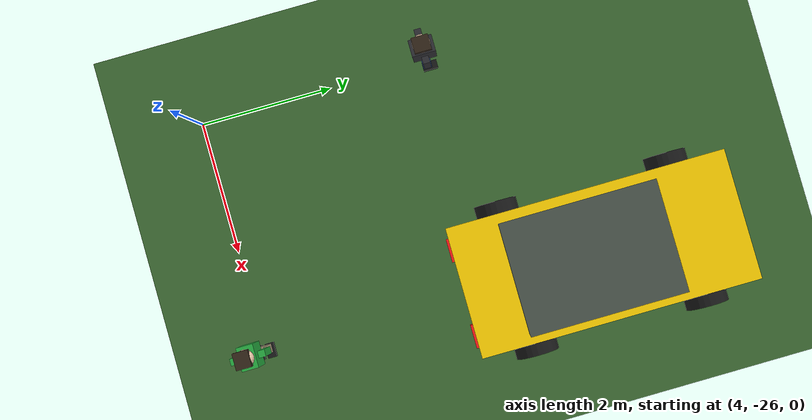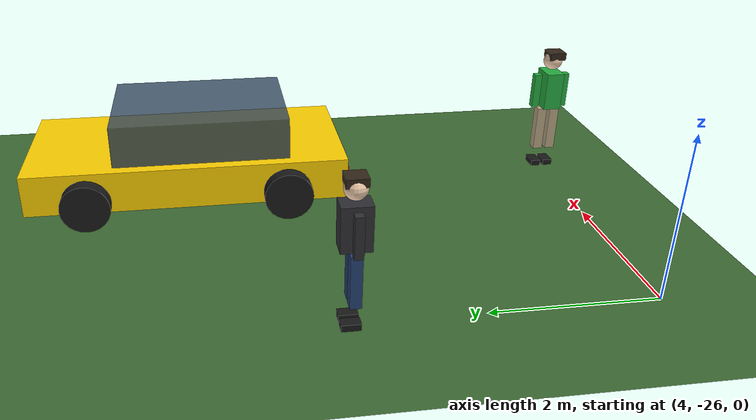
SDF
<sdf version="1.7">
 <world name="city_world">
  <model name="ground_plane">
   <static>true</static>
   <link name="link">
    <collision name="collision">
     <geometry><plane><normal>0 0 1</normal><size>300 300</size></plane></geometry>
     <surface><friction><ode><mu>100</mu><mu2>50</mu2></ode></friction></surface>
    </collision>
    <visual name="visual">
     <geometry><plane><normal>0 0 1</normal><size>300 300</size></plane></geometry>
     <material><ambient>0.24 0.42 0.20 1</ambient><diffuse>0.24 0.42 0.20 1</diffuse></material>
    </visual>
   </link>
  </model>
  <model name="car_7">
   <pose>7.5 -20.8 0.01 0 0 1.5708</pose>
   <static>true</static>
   <link name="link">
    <visual name="body">
     <pose>0 0 0.45 0 0 0</pose>
     <geometry><box><size>4.2 1.95 0.55</size></box></geometry>
     <material>
      <ambient>1.00 0.82 0.00 1</ambient>
      <diffuse>1.00 0.82 0.00 1</diffuse>
      <specular>0.5 0.5 0.5 1</specular>
     </material>
    </visual>
    <visual name="cabin">
     <pose>-0.2 0 0.95 0 0 0</pose>
     <geometry><box><size>2.3 1.65 0.65</size></box></geometry>
     <material>
      <ambient>0.22 0.30 0.40 0.85</ambient>
      <diffuse>0.22 0.30 0.40 0.85</diffuse>
      <specular>0.7 0.7 0.7 1</specular>
     </material>
    </visual>
    <visual name="hl_l">
     <pose>2.1 0.65 0.45 0 0 0</pose>
     <geometry><box><size>0.08 0.35 0.18</size></box></geometry>
     <material><ambient>1 1 0.8 1</ambient><diffuse>1 1 0.8 1</diffuse><emissive>1 1 0.8 1</emissive></material>
    </visual>
    <visual name="hl_r">
     <pose>2.1 -0.65 0.45 0 0 0</pose>
     <geometry><box><size>0.08 0.35 0.18</size></box></geometry>
     <material><ambient>1 1 0.8 1</ambient><diffuse>1 1 0.8 1</diffuse><emissive>1 1 0.8 1</emissive></material>
    </visual>
    <visual name="tl_l">
     <pose>-2.1 0.65 0.45 0 0 0</pose>
     <geometry><box><size>0.08 0.35 0.18</size></box></geometry>
     <material>
      <ambient>1 0.1 0.1 1</ambient>
      <diffuse>1 0.1 0.1 1</diffuse>
      <emissive>0.8 0 0 1</emissive>
     </material>
    </visual>
    <visual name="tl_r">
     <pose>-2.1 -0.65 0.45 0 0 0</pose>
     <geometry><box><size>0.08 0.35 0.18</size></box></geometry>
     <material>
      <ambient>1 0.1 0.1 1</ambient>
      <diffuse>1 0.1 0.1 1</diffuse>
      <emissive>0.8 0 0 1</emissive>
     </material>
    </visual>
    <visual name="w_fl">
     <pose>1.3 1.05 0.32 1.5708 0 0</pose>
     <geometry><cylinder><radius>0.32</radius><length>0.22</length></cylinder></geometry>
     <material><ambient>0.1 0.1 0.1 1</ambient><diffuse>0.1 0.1 0.1 1</diffuse></material>
    </visual>
    <visual name="w_fr">
     <pose>1.3 -1.05 0.32 1.5708 0 0</pose>
     <geometry><cylinder><radius>0.32</radius><length>0.22</length></cylinder></geometry>
     <material><ambient>0.1 0.1 0.1 1</ambient><diffuse>0.1 0.1 0.1 1</diffuse></material>
    </visual>
    <visual name="w_bl">
     <pose>-1.3 1.05 0.32 1.5708 0 0</pose>
     <geometry><cylinder><radius>0.32</radius><length>0.22</length></cylinder></geometry>
     <material><ambient>0.1 0.1 0.1 1</ambient><diffuse>0.1 0.1 0.1 1</diffuse></material>
    </visual>
    <visual name="w_br">
     <pose>-1.3 -1.05 0.32 1.5708 0 0</pose>
     <geometry><cylinder><radius>0.32</radius><length>0.22</length></cylinder></geometry>
     <material><ambient>0.1 0.1 0.1 1</ambient><diffuse>0.1 0.1 0.1 1</diffuse></material>
    </visual>
   </link>
  </model>
  <model name="pedestrian_2">
   <pose>7.5 -26.0 0.02 0 0 0.0000</pose>
   <static>true</static>
   <link name="link">
    <visual name="head">
     <pose>0 0 1.62 0 0 0</pose>
     <geometry><sphere><radius>0.13</radius></sphere></geometry>
     <material><ambient>0.94 0.80 0.68 1</ambient><diffuse>0.94 0.80 0.68 1</diffuse></material>
    </visual>
    <visual name="cap">
     <pose>0 -0.02 1.70 0 0 0</pose>
     <geometry><box><size>0.24 0.22 0.10</size></box></geometry>
     <material><ambient>0.2 0.15 0.1 1</ambient><diffuse>0.2 0.15 0.1 1</diffuse></material>
    </visual>
    <visual name="torso">
     <pose>0 0 1.20 0 0 0</pose>
     <geometry><box><size>0.34 0.24 0.52</size></box></geometry>
     <material><ambient>0.15 0.68 0.25 1</ambient><diffuse>0.15 0.68 0.25 1</diffuse></material>
    </visual>
    <visual name="arm_l">
     <pose>0 0.20 1.18 0 0 0</pose>
     <geometry><box><size>0.10 0.10 0.48</size></box></geometry>
     <material><ambient>0.15 0.68 0.25 1</ambient><diffuse>0.15 0.68 0.25 1</diffuse></material>
    </visual>
    <visual name="arm_r">
     <pose>0 -0.20 1.18 0 0 0</pose>
     <geometry><box><size>0.10 0.10 0.48</size></box></geometry>
     <material><ambient>0.15 0.68 0.25 1</ambient><diffuse>0.15 0.68 0.25 1</diffuse></material>
    </visual>
    <visual name="leg_l">
     <pose>0 0.09 0.60 0 0 0</pose>
     <geometry><box><size>0.13 0.13 0.62</size></box></geometry>
     <material><ambient>0.72 0.65 0.52 1</ambient><diffuse>0.72 0.65 0.52 1</diffuse></material>
    </visual>
    <visual name="leg_r">
     <pose>0 -0.09 0.60 0 0 0</pose>
     <geometry><box><size>0.13 0.13 0.62</size></box></geometry>
     <material><ambient>0.72 0.65 0.52 1</ambient><diffuse>0.72 0.65 0.52 1</diffuse></material>
    </visual>
    <visual name="shoe_l">
     <pose>0.04 0.09 0.05 0 0 0</pose>
     <geometry><box><size>0.22 0.13 0.08</size></box></geometry>
     <material><ambient>0.1 0.1 0.1 1</ambient><diffuse>0.1 0.1 0.1 1</diffuse></material>
    </visual>
    <visual name="shoe_r">
     <pose>0.04 -0.09 0.05 0 0 0</pose>
     <geometry><box><size>0.22 0.13 0.08</size></box></geometry>
     <material><ambient>0.1 0.1 0.1 1</ambient><diffuse>0.1 0.1 0.1 1</diffuse></material>
    </visual>
   </link>
  </model>
  <model name="pedestrian_6">
   <pose>4.0 -22.5 0.02 0 0 1.5708</pose>
   <static>true</static>
   <link name="link">
    <visual name="head">
     <pose>0 0 1.62 0 0 0</pose>
     <geometry><sphere><radius>0.13</radius></sphere></geometry>
     <material><ambient>0.94 0.80 0.68 1</ambient><diffuse>0.94 0.80 0.68 1</diffuse></material>
    </visual>
    <visual name="cap">
     <pose>0 -0.02 1.70 0 0 0</pose>
     <geometry><box><size>0.24 0.22 0.10</size></box></geometry>
     <material><ambient>0.2 0.15 0.1 1</ambient><diffuse>0.2 0.15 0.1 1</diffuse></material>
    </visual>
    <visual name="torso">
     <pose>0 0 1.20 0 0 0</pose>
     <geometry><box><size>0.34 0.24 0.52</size></box></geometry>
     <material><ambient>0.18 0.18 0.20 1</ambient><diffuse>0.18 0.18 0.20 1</diffuse></material>
    </visual>
    <visual name="arm_l">
     <pose>0 0.20 1.18 0 0 0</pose>
     <geometry><box><size>0.10 0.10 0.48</size></box></geometry>
     <material><ambient>0.18 0.18 0.20 1</ambient><diffuse>0.18 0.18 0.20 1</diffuse></material>
    </visual>
    <visual name="arm_r">
     <pose>0 -0.20 1.18 0 0 0</pose>
     <geometry><box><size>0.10 0.10 0.48</size></box></geometry>
     <material><ambient>0.18 0.18 0.20 1</ambient><diffuse>0.18 0.18 0.20 1</diffuse></material>
    </visual>
    <visual name="leg_l">
     <pose>0 0.09 0.60 0 0 0</pose>
     <geometry><box><size>0.13 0.13 0.62</size></box></geometry>
     <material><ambient>0.15 0.25 0.45 1</ambient><diffuse>0.15 0.25 0.45 1</diffuse></material>
    </visual>
    <visual name="leg_r">
     <pose>0 -0.09 0.60 0 0 0</pose>
     <geometry><box><size>0.13 0.13 0.62</size></box></geometry>
     <material><ambient>0.15 0.25 0.45 1</ambient><diffuse>0.15 0.25 0.45 1</diffuse></material>
    </visual>
    <visual name="shoe_l">
     <pose>0.04 0.09 0.05 0 0 0</pose>
     <geometry><box><size>0.22 0.13 0.08</size></box></geometry>
     <material><ambient>0.1 0.1 0.1 1</ambient><diffuse>0.1 0.1 0.1 1</diffuse></material>
    </visual>
    <visual name="shoe_r">
     <pose>0.04 -0.09 0.05 0 0 0</pose>
     <geometry><box><size>0.22 0.13 0.08</size></box></geometry>
     <material><ambient>0.1 0.1 0.1 1</ambient><diffuse>0.1 0.1 0.1 1</diffuse></material>
    </visual>
   </link>
  </model>
 </world>
</sdf>
